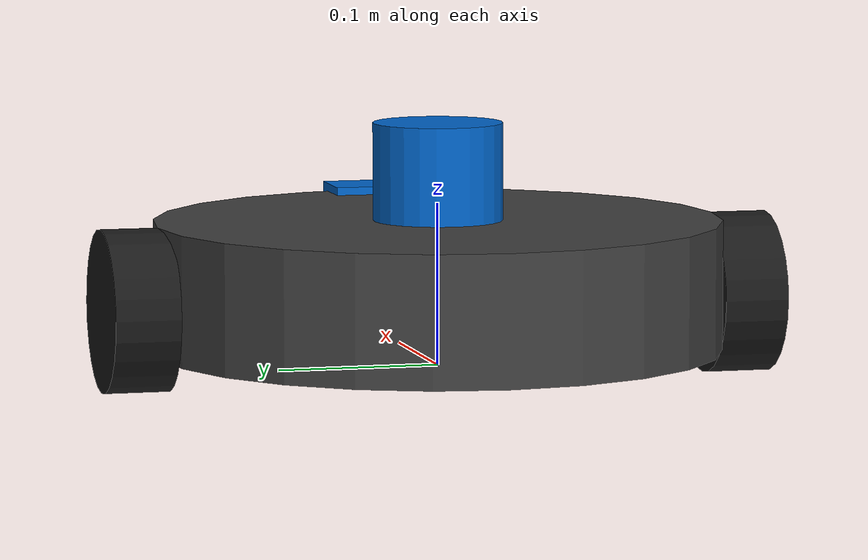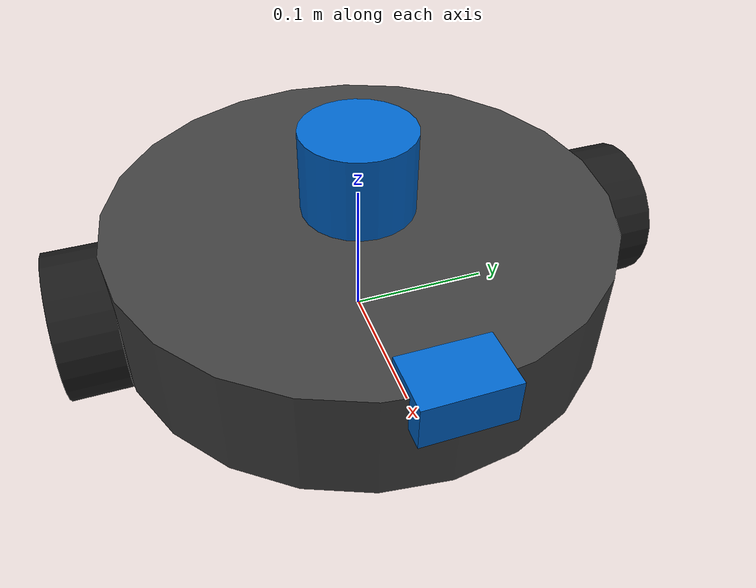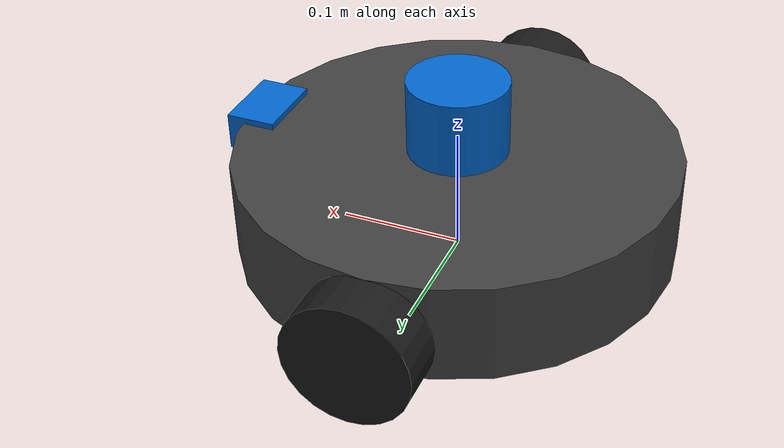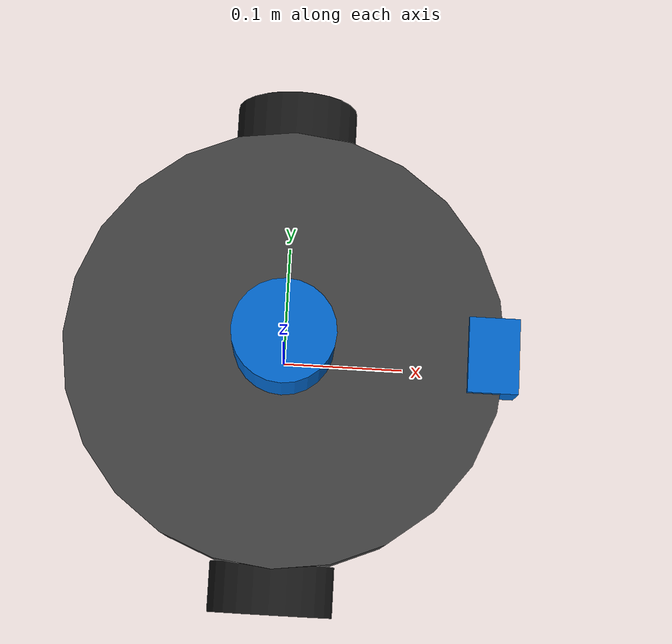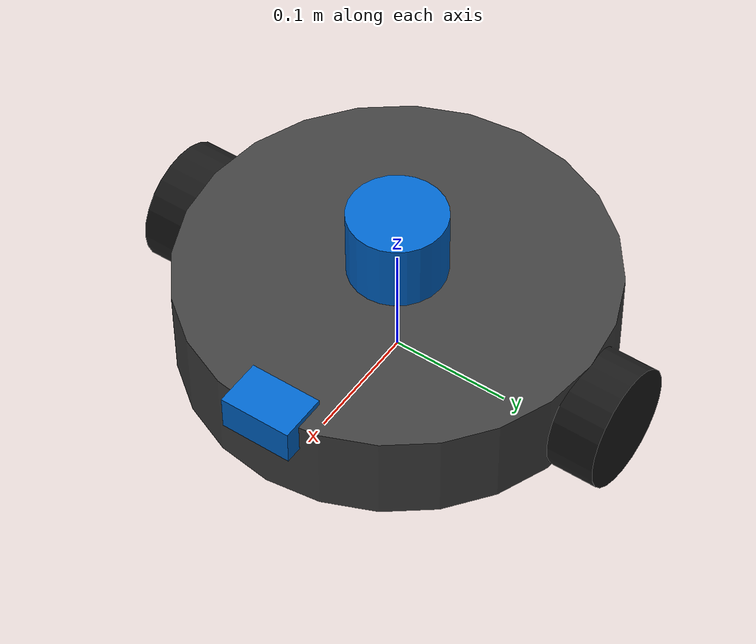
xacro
<?xml version="1.0"?>
<robot name="mar_robot" xmlns:xacro="http://www.ros.org/wiki/xacro">

  <xacro:property name="base_radius"    value="0.175"/>
  <xacro:property name="base_height"    value="0.08"/>
  <xacro:property name="base_mass"      value="2.0"/>
  <xacro:property name="wheel_radius"   value="0.05"/>
  <xacro:property name="wheel_width"    value="0.04"/>
  <xacro:property name="wheel_mass"     value="0.3"/>
  <xacro:property name="wheel_offset_y" value="0.19"/>
  <xacro:property name="wheel_offset_z" value="-0.01"/>
  <xacro:property name="caster_radius"  value="0.02"/>
  <xacro:property name="caster_mass"    value="0.1"/>

  <link name="base_footprint"/>

  <joint name="base_joint" type="fixed">
    <parent link="base_footprint"/>
    <child  link="base_link"/>
    <origin xyz="0 0 ${wheel_radius}" rpy="0 0 0"/>
  </joint>

  <link name="base_link">
    <visual>
      <geometry><cylinder radius="${base_radius}" length="${base_height}"/></geometry>
      <material name="dark_gray"><color rgba="0.25 0.25 0.25 1.0"/></material>
    </visual>
    <collision>
      <geometry><cylinder radius="${base_radius}" length="${base_height}"/></geometry>
    </collision>
    <inertial>
      <mass value="${base_mass}"/>
      <inertia
        ixx="${(1/12)*base_mass*(3*base_radius*base_radius + base_height*base_height)}"
        iyy="${(1/12)*base_mass*(3*base_radius*base_radius + base_height*base_height)}"
        izz="${(1/2)*base_mass*base_radius*base_radius}"
        ixy="0" ixz="0" iyz="0"/>
    </inertial>
  </link>

  <xacro:macro name="wheel" params="name y_reflect">
    <link name="${name}_wheel_link">
      <visual>
        <geometry><cylinder radius="${wheel_radius}" length="${wheel_width}"/></geometry>
        <material name="black"><color rgba="0.1 0.1 0.1 1.0"/></material>
      </visual>
      <collision>
        <geometry><cylinder radius="${wheel_radius}" length="${wheel_width}"/></geometry>
      </collision>
      <inertial>
        <mass value="${wheel_mass}"/>
        <inertia
          ixx="${(1/12)*wheel_mass*(3*wheel_radius*wheel_radius + wheel_width*wheel_width)}"
          iyy="${(1/12)*wheel_mass*(3*wheel_radius*wheel_radius + wheel_width*wheel_width)}"
          izz="${(1/2)*wheel_mass*wheel_radius*wheel_radius}"
          ixy="0" ixz="0" iyz="0"/>
      </inertial>
    </link>
    <joint name="${name}_wheel_joint" type="continuous">
      <parent link="base_link"/>
      <child  link="${name}_wheel_link"/>
      <origin xyz="0 ${y_reflect * wheel_offset_y} ${wheel_offset_z}" rpy="${-pi/2} 0 0"/>
      <axis xyz="0 0 1"/>
      <dynamics damping="0.1" friction="0.1"/>
    </joint>
  </xacro:macro>

  <xacro:wheel name="left"  y_reflect="1"/>
  <xacro:wheel name="right" y_reflect="-1"/>

  <link name="caster_link">
    <visual>
      <geometry><sphere radius="${caster_radius}"/></geometry>
      <material name="light_gray"><color rgba="0.6 0.6 0.6 1.0"/></material>
    </visual>
    <collision>
      <geometry><sphere radius="${caster_radius}"/></geometry>
    </collision>
    <inertial>
      <mass value="${caster_mass}"/>
      <inertia
        ixx="${(2/5)*caster_mass*caster_radius*caster_radius}"
        iyy="${(2/5)*caster_mass*caster_radius*caster_radius}"
        izz="${(2/5)*caster_mass*caster_radius*caster_radius}"
        ixy="0" ixz="0" iyz="0"/>
    </inertial>
  </link>

  <joint name="caster_joint" type="fixed">
    <parent link="base_link"/>
    <child  link="caster_link"/>
    <origin xyz="${-base_radius + caster_radius} 0 ${-base_height/2 + caster_radius}" rpy="0 0 0"/>
  </joint>

  <link name="lidar_link">
    <visual>
      <geometry><cylinder radius="0.04" length="0.06"/></geometry>
      <material name="blue"><color rgba="0.0 0.4 0.8 1.0"/></material>
    </visual>
    <collision>
      <geometry><cylinder radius="0.04" length="0.06"/></geometry>
    </collision>
    <inertial>
      <mass value="0.1"/>
      <inertia ixx="0.001" iyy="0.001" izz="0.001" ixy="0" ixz="0" iyz="0"/>
    </inertial>
  </link>

  <joint name="lidar_joint" type="fixed">
    <parent link="base_link"/>
    <child  link="lidar_link"/>
    <origin xyz="0 0 ${base_height/2 + 0.03}" rpy="0 0 0"/>
  </joint>

  <link name="imu_link">
    <visual>
      <geometry><box size="0.03 0.03 0.01"/></geometry>
      <material name="green"><color rgba="0.0 0.7 0.2 1.0"/></material>
    </visual>
    <inertial>
      <mass value="0.05"/>
      <inertia ixx="0.0001" iyy="0.0001" izz="0.0001" ixy="0" ixz="0" iyz="0"/>
    </inertial>
  </link>

  <joint name="imu_joint" type="fixed">
    <parent link="base_link"/>
    <child  link="imu_link"/>
    <origin xyz="0 0 ${base_height/2}" rpy="0 0 0"/>
  </joint>

  <link name="camera_link">
    <visual>
      <geometry><box size="0.04 0.06 0.03"/></geometry>
      <material name="blue2"><color rgba="0.0 0.4 0.8 1.0"/></material>
    </visual>
    <inertial>
      <mass value="0.05"/>
      <inertia ixx="0.0001" iyy="0.0001" izz="0.0001" ixy="0" ixz="0" iyz="0"/>
    </inertial>
  </link>

  <joint name="camera_joint" type="fixed">
    <parent link="base_link"/>
    <child  link="camera_link"/>
    <origin xyz="${base_radius - 0.01} 0 ${base_height/2 - 0.01}" rpy="0 0 0"/>
  </joint>

  <link name="camera_optical_link"/>
  <joint name="camera_optical_joint" type="fixed">
    <parent link="camera_link"/>
    <child  link="camera_optical_link"/>
    <origin xyz="0 0 0" rpy="${-pi/2} 0 ${-pi/2}"/>
  </joint>

  <gazebo>
    <plugin filename="gz-sim-diff-drive-system" name="gz::sim::systems::DiffDrive">
      <left_joint>left_wheel_joint</left_joint>
      <right_joint>right_wheel_joint</right_joint>
      <wheel_separation>0.38</wheel_separation>
      <wheel_radius>0.05</wheel_radius>
      <max_linear_velocity>0.5</max_linear_velocity>
      <max_angular_velocity>1.5</max_angular_velocity>
      <topic>cmd_vel</topic>
      <odom_topic>odom</odom_topic>
      <tf_topic>tf</tf_topic>
      <frame_id>odom</frame_id>
      <child_frame_id>base_footprint</child_frame_id>
      <odom_publish_frequency>30</odom_publish_frequency>
    </plugin>
  </gazebo>

  <gazebo>
    <plugin filename="gz-sim-joint-state-publisher-system" name="gz::sim::systems::JointStatePublisher">
      <topic>joint_states</topic>
    </plugin>
  </gazebo>

  <gazebo reference="lidar_link">
    <sensor name="lidar" type="gpu_lidar">
      <topic>scan</topic>
      <update_rate>10</update_rate>
      <always_on>true</always_on>
      <visualize>true</visualize>
      <lidar>
        <scan>
          <horizontal>
            <samples>360</samples>
            <resolution>1</resolution>
            <min_angle>-3.14159</min_angle>
            <max_angle>3.14159</max_angle>
          </horizontal>
        </scan>
        <range><min>0.12</min><max>12.0</max><resolution>0.01</resolution></range>
        <noise><type>gaussian</type><mean>0.0</mean><stddev>0.01</stddev></noise>
      </lidar>
    </sensor>
  </gazebo>

  <gazebo reference="imu_link">
    <sensor name="imu" type="imu">
      <topic>imu</topic>
      <update_rate>100</update_rate>
      <always_on>true</always_on>
    </sensor>
  </gazebo>

  <gazebo reference="left_wheel_link">
    <mu1>1.0</mu1><mu2>1.0</mu2><kp>500000.0</kp><kd>10.0</kd>
  </gazebo>
  <gazebo reference="right_wheel_link">
    <mu1>1.0</mu1><mu2>1.0</mu2><kp>500000.0</kp><kd>10.0</kd>
  </gazebo>
  <gazebo reference="caster_link">
    <mu1>0.01</mu1><mu2>0.01</mu2>
  </gazebo>

</robot>
